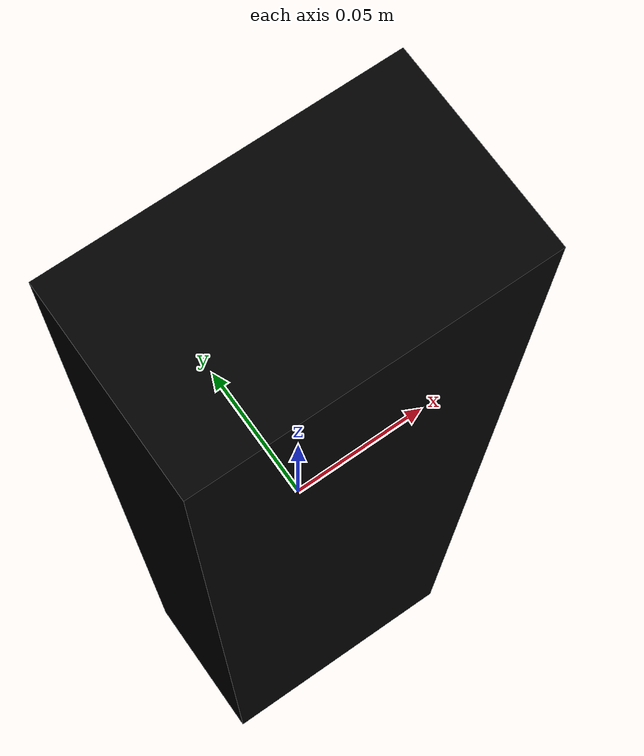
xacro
<?xml version="1.0"?>
<robot xmlns:xacro="http://www.ros.org/wiki/xacro" name="pp_prism_obstacle">
  <xacro:arg name="size_x" default="0.10"/>
  <xacro:arg name="size_y" default="0.06"/>
  <xacro:arg name="height" default="0.36"/>
  <xacro:arg name="color_rgba" default="0 0 0 1"/>

  <link name="base_link">
    <visual>
      <geometry>
        <box size="$(arg size_x) $(arg size_y) $(arg height)"/>
      </geometry>
      <material name="black">
        <color rgba="$(arg color_rgba)"/>
      </material>
    </visual>

    <collision>
      <geometry>
        <box size="$(arg size_x) $(arg size_y) $(arg height)"/>
      </geometry>
    </collision>

    <inertial>
      <mass value="2.0"/>
      <inertia ixx="0.01" ixy="0.0" ixz="0.0" iyy="0.01" iyz="0.0" izz="0.01"/>
    </inertial>
  </link>

  <gazebo>
    <static>true</static>
  </gazebo>

  <gazebo reference="base_link">
    <material>Gazebo/Black</material>
    <ambient>0 0 0 1</ambient>
    <diffuse>0 0 0 1</diffuse>
    <specular>0.01 0.01 0.01 1</specular>
  </gazebo>
</robot>
